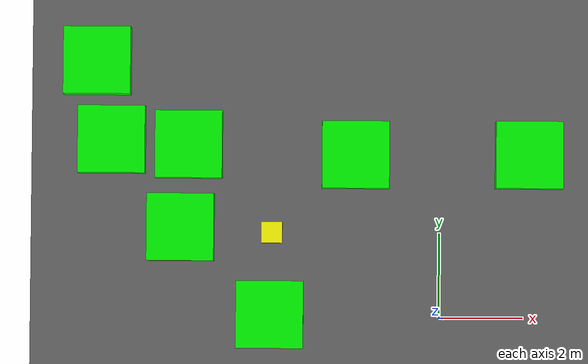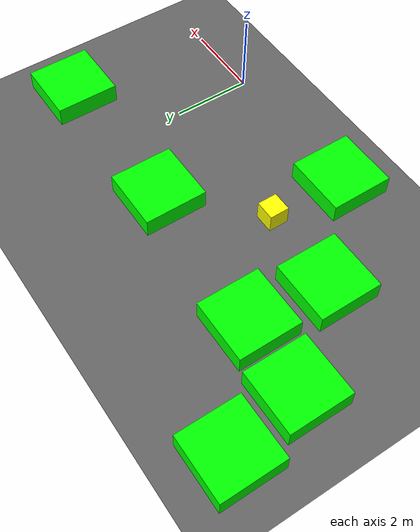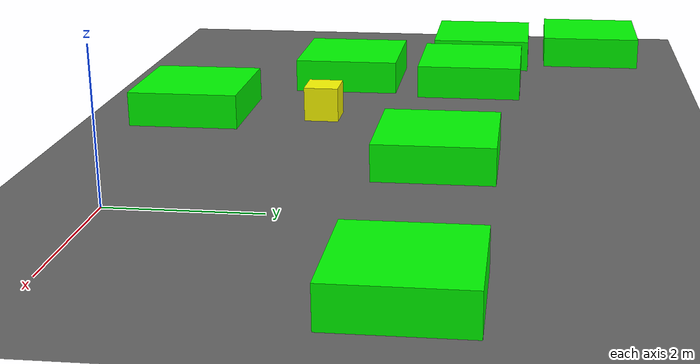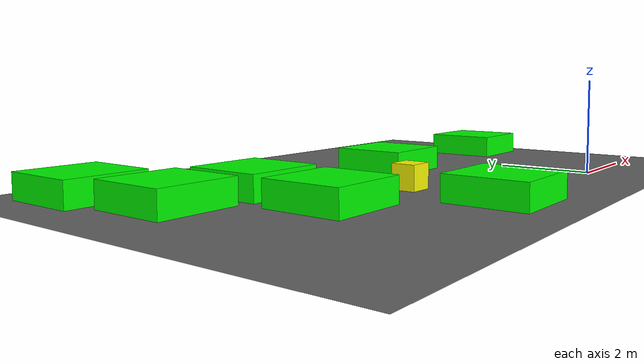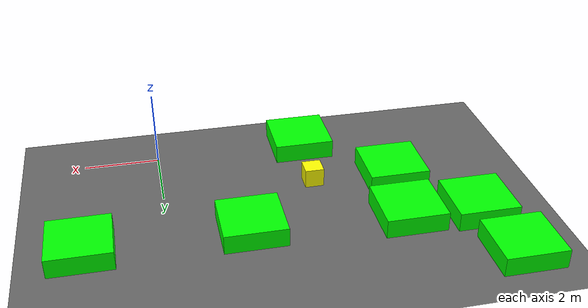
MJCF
<mujoco model="lvl5_corridor_obs10_d15_depth2_seed0">
    <compiler angle="degree" coordinate="local" inertiafromgeom="true"/>
    <option integrator="RK4" timestep="0.01"/>

    <asset>
        <texture builtin="gradient" height="100" rgb1="0.6 0.8 1" rgb2="0 0 0" type="skybox" width="100"/>
        <texture name="floor_texture" type="2d" builtin="checker" width="100" height="100" rgb1="0 0 0" rgb2="0.8 0.8 0.8"/>
        <material name="MatPlane" reflectance="0.5" shininess="1" specular="1" texrepeat="10 10" texture="floor_texture"/>
    </asset>

    <!-- Excluding the contact between the agent and the goal, and the agent and the floor -->
    <contact>
        <exclude body1="agent" body2="goal"/>
        <exclude body1 = "agent" body2 = "floor"/>
    </contact>

    <extension>
        <plugin plugin = "mujoco.pid">
            <instance name = "pid1">
                <config key="kp" value="2"/>
                <config key="ki" value="0"/>
                <config key="kd" value="55"/>
            </instance>
        </plugin>
    </extension>

    <worldbody>
        <light cutoff="100" diffuse="1 1 1" dir="-0 0 -1.3" directional="true" exponent="1" pos="0 0 1.3" specular=".1 .1 .1"/>
        <body name="floor" pos="0 0 0">
            <geom name="floor_geom" type="plane" size="20 20 0.1" material="MatPlane"/>
        </body>

                <body name="goal" pos="12.0000 -12.0000 0">
            <geom name="goal_geom" type="plane" size="0.5 0.5 1" pos="0 0 0" rgba="1 0 0 1"/>
        </body>

                <body name="agent" pos="-4.0000 2.0000 0.250">
            <joint name="j1" type="slide" axis ="1 0 0 "/>
            <joint name="j2" type="slide" axis ="0 1 0 "/>
            <geom name="agent_geom" type="box" size="0.25 0.25 0.250" rgba="1 1 0 1"/>
        </body>

        <body name="obstacle1" pos="-8.1914 6.0744 0.250">  <geom name="obstacle1_geom" type="box" size="0.8000 0.8000 0.250" rgba="0 1 0 1"/></body>
        <body name="obstacle2" pos="-7.8323 4.1967 0.250">  <geom name="obstacle2_geom" type="box" size="0.8000 0.8000 0.250" rgba="0 1 0 1"/></body>
        <body name="obstacle3" pos="-5.9933 4.0887 0.250">  <geom name="obstacle3_geom" type="box" size="0.8000 0.8000 0.250" rgba="0 1 0 1"/></body>
        <body name="obstacle4" pos="-2.0146 3.8678 0.250">  <geom name="obstacle4_geom" type="box" size="0.8000 0.8000 0.250" rgba="0 1 0 1"/></body>
        <body name="obstacle5" pos="2.1207 3.8885 0.250">  <geom name="obstacle5_geom" type="box" size="0.8000 0.8000 0.250" rgba="0 1 0 1"/></body>
        <body name="obstacle6" pos="-6.1776 2.1185 0.250">  <geom name="obstacle6_geom" type="box" size="0.8000 0.8000 0.250" rgba="0 1 0 1"/></body>
        <body name="obstacle7" pos="-4.0423 0.0513 0.250">  <geom name="obstacle7_geom" type="box" size="0.8000 0.8000 0.250" rgba="0 1 0 1"/></body>

    </worldbody>

    <sensor>
<!-- SENSORS -->

        <distance name="dist1" geom1="agent_geom" geom2="obstacle1_geom" cutoff="1.5"/>
        <distance name="dist2" geom1="agent_geom" geom2="obstacle2_geom" cutoff="1.5"/>
        <distance name="dist3" geom1="agent_geom" geom2="obstacle3_geom" cutoff="1.5"/>
        <distance name="dist4" geom1="agent_geom" geom2="obstacle4_geom" cutoff="1.5"/>
        <distance name="dist5" geom1="agent_geom" geom2="obstacle5_geom" cutoff="1.5"/>
        <distance name="dist6" geom1="agent_geom" geom2="obstacle6_geom" cutoff="1.5"/>
        <distance name="dist7" geom1="agent_geom" geom2="obstacle7_geom" cutoff="1.5"/>
</sensor>

    <actuator>
        <plugin joint="j1" plugin="mujoco.pid" instance="pid1" />
        <plugin joint="j2" plugin="mujoco.pid" instance="pid1"/>
    </actuator>
</mujoco>
